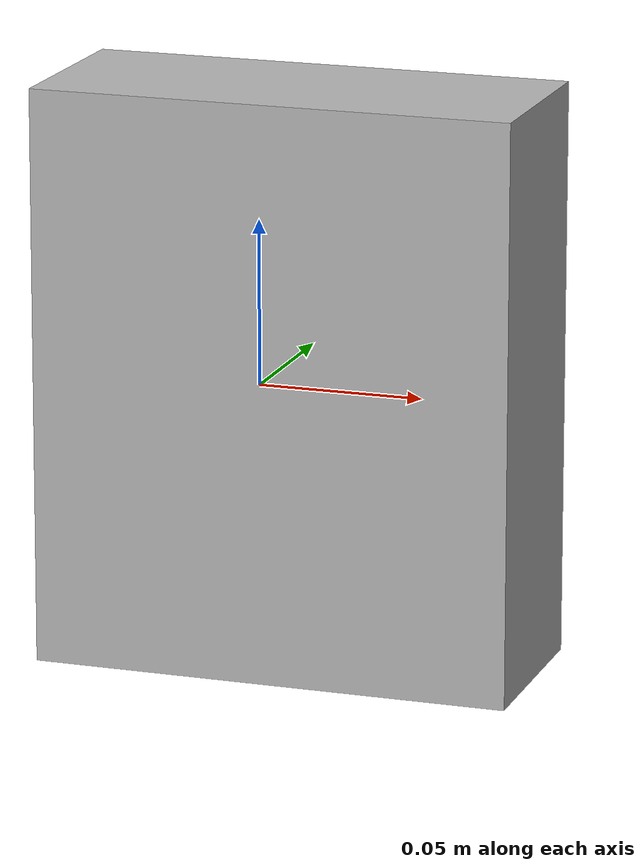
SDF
<?xml version="1.0" ?>
<sdf version="1.4">
  <model name="shelf1_box1_6">
    <link name="body">
      <pose>0 0 0 0 0 0</pose>
      <inertial>
        <pose>   0.002000   0.030847  -0.004500 0 0 0</pose>
        <mass>0.5</mass>
        <inertia>
          <ixx>0.01</ixx>
          <ixy>0</ixy>
          <ixz>0</ixz>
          <iyy>0.01</iyy>
          <iyz>0</iyz>
          <izz>0.01</izz>
        </inertia>
      </inertial>
      <collision name="collision">
        <geometry>
          <mesh>
            <uri>model://bookshelf/shelf1_items/box1_6/box1_6.dae</uri>
          </mesh>
        </geometry>
      </collision>
      <visual name="visual">
        <geometry>
          <mesh>
            <uri>model://bookshelf/shelf1_items/box1_6/box1_6.dae</uri>
          </mesh>
        </geometry>
      </visual>
    </link>
  </model>
</sdf>
